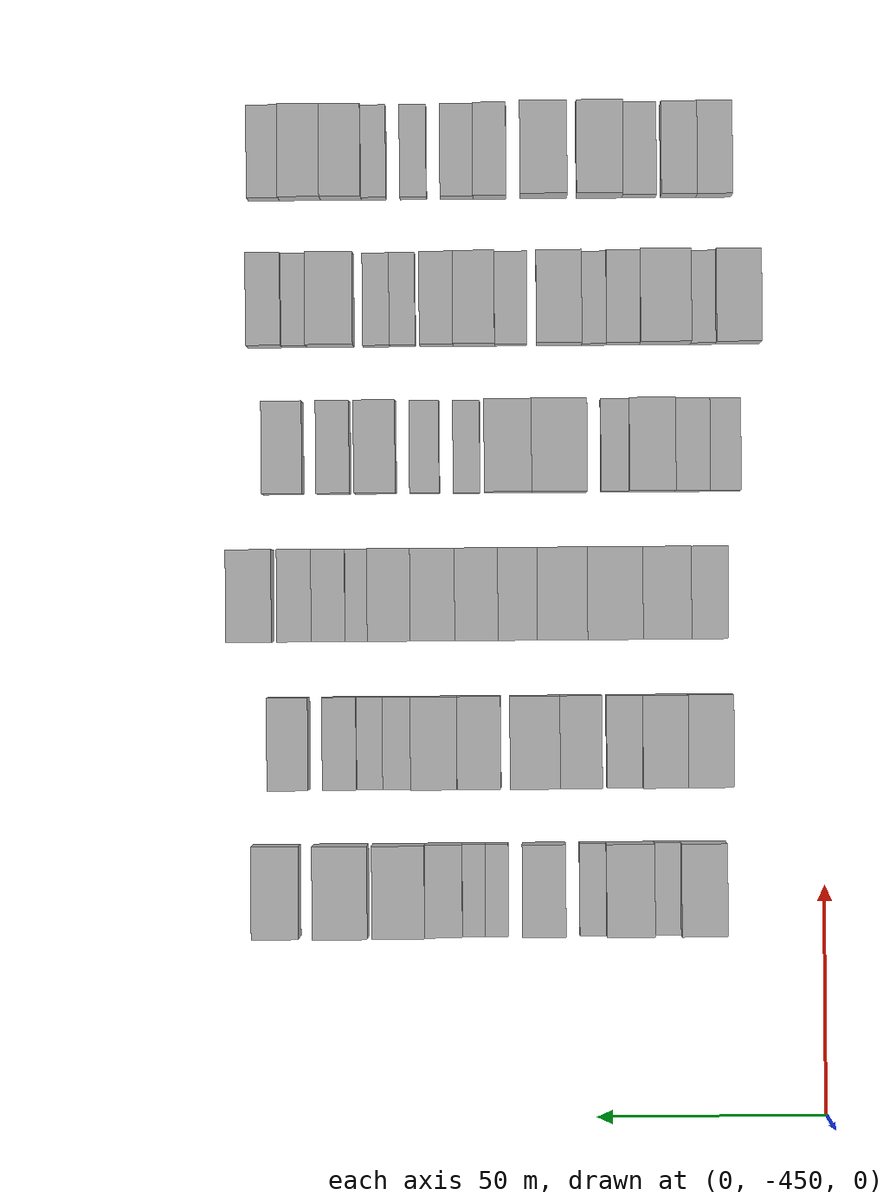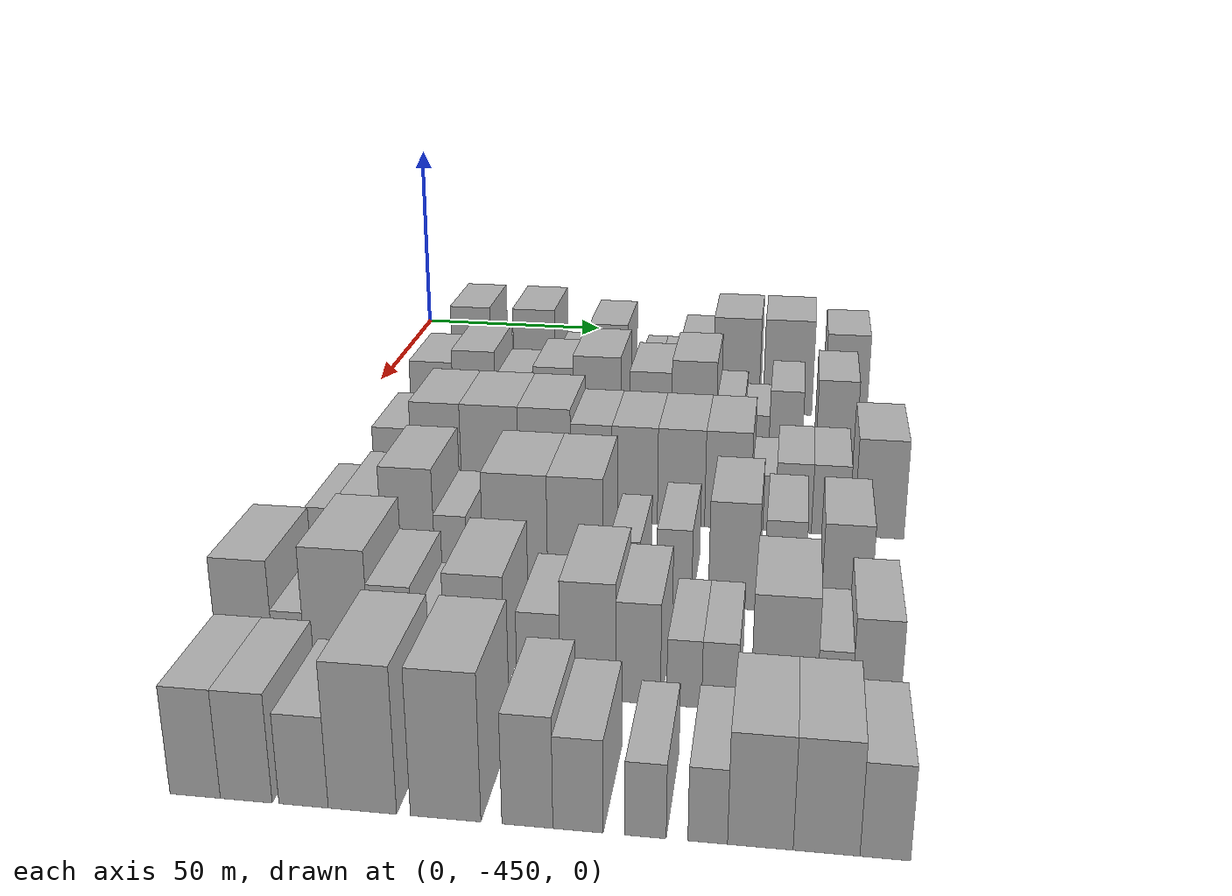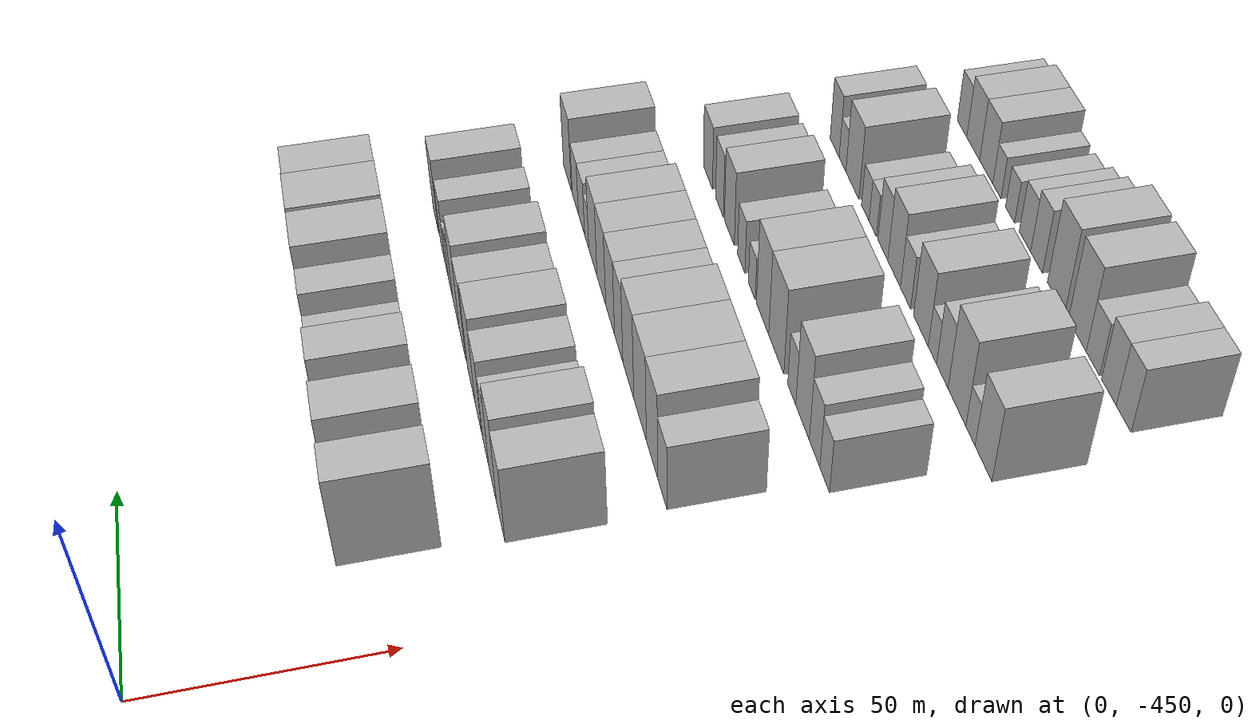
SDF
<sdf version="1.6">
 <world name="default">
  <model name="building_13">
   <static>1</static>
   <pose>50.0000 -423.3441 0 0.000000 0.000000 0.000000</pose>
   <link name="link">
    <pose>0 0 12.00 0 0 0</pose>
    <collision name="collision"><geometry><box><size>20.0000 9.8827 24.0000</size></box></geometry></collision>
    <visual name="visual">
     <cast_shadows>0</cast_shadows>
     <geometry><box><size>20.0000 9.8827 24.0000</size></box></geometry>
     <material>
      <script>
       <uri>model://HANNAS_wall/materials/scripts</uri>
       <uri>model://HANNAS_wall/materials/textures</uri>
       <name>vrc/HANNAS_wall</name>
      </script>
     </material>
    </visual>
   </link>
  </model>
  <model name="building_14">
   <static>1</static>
   <pose>50.0000 -415.5265 0 0.000000 0.000000 0.000000</pose>
   <link name="link">
    <pose>0 0 6.00 0 0 0</pose>
    <collision name="collision"><geometry><box><size>20.0000 5.7524 12.0000</size></box></geometry></collision>
    <visual name="visual">
     <cast_shadows>0</cast_shadows>
     <geometry><box><size>20.0000 5.7524 12.0000</size></box></geometry>
     <material>
      <script>
       <uri>model://HANNAS_wall/materials/scripts</uri>
       <uri>model://HANNAS_wall/materials/textures</uri>
       <name>vrc/HANNAS_wall</name>
      </script>
     </material>
    </visual>
   </link>
  </model>
  <model name="building_15">
   <static>1</static>
   <pose>50.0000 -407.4564 0 0.000000 0.000000 0.000000</pose>
   <link name="link">
    <pose>0 0 12.00 0 0 0</pose>
    <collision name="collision"><geometry><box><size>20.0000 10.3880 24.0000</size></box></geometry></collision>
    <visual name="visual">
     <cast_shadows>0</cast_shadows>
     <geometry><box><size>20.0000 10.3880 24.0000</size></box></geometry>
     <material>
      <script>
       <uri>model://HANNAS_wall/materials/scripts</uri>
       <uri>model://HANNAS_wall/materials/textures</uri>
       <name>vrc/HANNAS_wall</name>
      </script>
     </material>
    </visual>
   </link>
  </model>
  <model name="building_16">
   <static>1</static>
   <pose>50.0000 -399.3901 0 0.000000 0.000000 0.000000</pose>
   <link name="link">
    <pose>0 0 6.00 0 0 0</pose>
    <collision name="collision"><geometry><box><size>20.0000 5.7446 12.0000</size></box></geometry></collision>
    <visual name="visual">
     <cast_shadows>0</cast_shadows>
     <geometry><box><size>20.0000 5.7446 12.0000</size></box></geometry>
     <material>
      <script>
       <uri>model://HANNAS_wall/materials/scripts</uri>
       <uri>model://HANNAS_wall/materials/textures</uri>
       <name>vrc/HANNAS_wall</name>
      </script>
     </material>
    </visual>
   </link>
  </model>
  <model name="building_17">
   <static>1</static>
   <pose>50.0000 -388.8253 0 0.000000 0.000000 0.000000</pose>
   <link name="link">
    <pose>0 0 10.50 0 0 0</pose>
    <collision name="collision"><geometry><box><size>20.0000 9.3849 21.0000</size></box></geometry></collision>
    <visual name="visual">
     <cast_shadows>0</cast_shadows>
     <geometry><box><size>20.0000 9.3849 21.0000</size></box></geometry>
     <material>
      <script>
       <uri>model://HANNAS_wall/materials/scripts</uri>
       <uri>model://HANNAS_wall/materials/textures</uri>
       <name>vrc/HANNAS_wall</name>
      </script>
     </material>
    </visual>
   </link>
  </model>
  <model name="building_18">
   <static>1</static>
   <pose>50.0000 -378.6130 0 0.000000 0.000000 0.000000</pose>
   <link name="link">
    <pose>0 0 6.00 0 0 0</pose>
    <collision name="collision"><geometry><box><size>20.0000 5.0396 12.0000</size></box></geometry></collision>
    <visual name="visual">
     <cast_shadows>0</cast_shadows>
     <geometry><box><size>20.0000 5.0396 12.0000</size></box></geometry>
     <material>
      <script>
       <uri>model://HANNAS_wall/materials/scripts</uri>
       <uri>model://HANNAS_wall/materials/textures</uri>
       <name>vrc/HANNAS_wall</name>
      </script>
     </material>
    </visual>
   </link>
  </model>
  <model name="building_19">
   <static>1</static>
   <pose>50.0000 -373.6251 0 0.000000 0.000000 0.000000</pose>
   <link name="link">
    <pose>0 0 6.00 0 0 0</pose>
    <collision name="collision"><geometry><box><size>20.0000 4.9362 12.0000</size></box></geometry></collision>
    <visual name="visual">
     <cast_shadows>0</cast_shadows>
     <geometry><box><size>20.0000 4.9362 12.0000</size></box></geometry>
     <material>
      <script>
       <uri>model://HANNAS_wall/materials/scripts</uri>
       <uri>model://HANNAS_wall/materials/textures</uri>
       <name>vrc/HANNAS_wall</name>
      </script>
     </material>
    </visual>
   </link>
  </model>
  <model name="building_20">
   <static>1</static>
   <pose>50.0000 -367.1172 0 0.000000 0.000000 0.000000</pose>
   <link name="link">
    <pose>0 0 9.00 0 0 0</pose>
    <collision name="collision"><geometry><box><size>20.0000 8.0795 18.0000</size></box></geometry></collision>
    <visual name="visual">
     <cast_shadows>0</cast_shadows>
     <geometry><box><size>20.0000 8.0795 18.0000</size></box></geometry>
     <material>
      <script>
       <uri>model://HANNAS_wall/materials/scripts</uri>
       <uri>model://HANNAS_wall/materials/textures</uri>
       <name>vrc/HANNAS_wall</name>
      </script>
     </material>
    </visual>
   </link>
  </model>
  <model name="building_21">
   <static>1</static>
   <pose>50.0000 -357.4236 0 0.000000 0.000000 0.000000</pose>
   <link name="link">
    <pose>0 0 12.00 0 0 0</pose>
    <collision name="collision"><geometry><box><size>20.0000 11.3078 24.0000</size></box></geometry></collision>
    <visual name="visual">
     <cast_shadows>0</cast_shadows>
     <geometry><box><size>20.0000 11.3078 24.0000</size></box></geometry>
     <material>
      <script>
       <uri>model://HANNAS_wall/materials/scripts</uri>
       <uri>model://HANNAS_wall/materials/textures</uri>
       <name>vrc/HANNAS_wall</name>
      </script>
     </material>
    </visual>
   </link>
  </model>
  <model name="building_22">
   <static>1</static>
   <pose>50.0000 -344.8530 0 0.000000 0.000000 0.000000</pose>
   <link name="link">
    <pose>0 0 12.00 0 0 0</pose>
    <collision name="collision"><geometry><box><size>20.0000 11.8333 24.0000</size></box></geometry></collision>
    <visual name="visual">
     <cast_shadows>0</cast_shadows>
     <geometry><box><size>20.0000 11.8333 24.0000</size></box></geometry>
     <material>
      <script>
       <uri>model://HANNAS_wall/materials/scripts</uri>
       <uri>model://HANNAS_wall/materials/textures</uri>
       <name>vrc/HANNAS_wall</name>
      </script>
     </material>
    </visual>
   </link>
  </model>
  <model name="building_23">
   <static>1</static>
   <pose>50.0000 -330.8366 0 0.000000 0.000000 0.000000</pose>
   <link name="link">
    <pose>0 0 10.50 0 0 0</pose>
    <collision name="collision"><geometry><box><size>20.0000 10.1995 21.0000</size></box></geometry></collision>
    <visual name="visual">
     <cast_shadows>0</cast_shadows>
     <geometry><box><size>20.0000 10.1995 21.0000</size></box></geometry>
     <material>
      <script>
       <uri>model://HANNAS_wall/materials/scripts</uri>
       <uri>model://HANNAS_wall/materials/textures</uri>
       <name>vrc/HANNAS_wall</name>
      </script>
     </material>
    </visual>
   </link>
  </model>
  <model name="building_132">
   <static>1</static>
   <pose>82.0000 -425.0228 0 0.000000 0.000000 0.000000</pose>
   <link name="link">
    <pose>0 0 10.50 0 0 0</pose>
    <collision name="collision"><geometry><box><size>20.0000 9.8788 21.0000</size></box></geometry></collision>
    <visual name="visual">
     <cast_shadows>0</cast_shadows>
     <geometry><box><size>20.0000 9.8788 21.0000</size></box></geometry>
     <material>
      <script>
       <uri>model://HANNAS_wall/materials/scripts</uri>
       <uri>model://HANNAS_wall/materials/textures</uri>
       <name>vrc/HANNAS_wall</name>
      </script>
     </material>
    </visual>
   </link>
  </model>
  <model name="building_133">
   <static>1</static>
   <pose>82.0000 -415.1996 0 0.000000 0.000000 0.000000</pose>
   <link name="link">
    <pose>0 0 12.00 0 0 0</pose>
    <collision name="collision"><geometry><box><size>20.0000 9.7675 24.0000</size></box></geometry></collision>
    <visual name="visual">
     <cast_shadows>0</cast_shadows>
     <geometry><box><size>20.0000 9.7675 24.0000</size></box></geometry>
     <material>
      <script>
       <uri>model://HANNAS_wall/materials/scripts</uri>
       <uri>model://HANNAS_wall/materials/textures</uri>
       <name>vrc/HANNAS_wall</name>
      </script>
     </material>
    </visual>
   </link>
  </model>
  <model name="building_134">
   <static>1</static>
   <pose>82.0000 -406.4471 0 0.000000 0.000000 0.000000</pose>
   <link name="link">
    <pose>0 0 9.00 0 0 0</pose>
    <collision name="collision"><geometry><box><size>20.0000 7.7374 18.0000</size></box></geometry></collision>
    <visual name="visual">
     <cast_shadows>0</cast_shadows>
     <geometry><box><size>20.0000 7.7374 18.0000</size></box></geometry>
     <material>
      <script>
       <uri>model://HANNAS_wall/materials/scripts</uri>
       <uri>model://HANNAS_wall/materials/textures</uri>
       <name>vrc/HANNAS_wall</name>
      </script>
     </material>
    </visual>
   </link>
  </model>
  <model name="building_135">
   <static>1</static>
   <pose>82.0000 -397.0421 0 0.000000 0.000000 0.000000</pose>
   <link name="link">
    <pose>0 0 10.50 0 0 0</pose>
    <collision name="collision"><geometry><box><size>20.0000 9.0727 21.0000</size></box></geometry></collision>
    <visual name="visual">
     <cast_shadows>0</cast_shadows>
     <geometry><box><size>20.0000 9.0727 21.0000</size></box></geometry>
     <material>
      <script>
       <uri>model://HANNAS_wall/materials/scripts</uri>
       <uri>model://HANNAS_wall/materials/textures</uri>
       <name>vrc/HANNAS_wall</name>
      </script>
     </material>
    </visual>
   </link>
  </model>
  <model name="building_136">
   <static>1</static>
   <pose>82.0000 -387.1147 0 0.000000 0.000000 0.000000</pose>
   <link name="link">
    <pose>0 0 12.00 0 0 0</pose>
    <collision name="collision"><geometry><box><size>20.0000 10.7822 24.0000</size></box></geometry></collision>
    <visual name="visual">
     <cast_shadows>0</cast_shadows>
     <geometry><box><size>20.0000 10.7822 24.0000</size></box></geometry>
     <material>
      <script>
       <uri>model://HANNAS_wall/materials/scripts</uri>
       <uri>model://HANNAS_wall/materials/textures</uri>
       <name>vrc/HANNAS_wall</name>
      </script>
     </material>
    </visual>
   </link>
  </model>
  <model name="building_137">
   <static>1</static>
   <pose>82.0000 -375.0086 0 0.000000 0.000000 0.000000</pose>
   <link name="link">
    <pose>0 0 10.50 0 0 0</pose>
    <collision name="collision"><geometry><box><size>20.0000 9.4299 21.0000</size></box></geometry></collision>
    <visual name="visual">
     <cast_shadows>0</cast_shadows>
     <geometry><box><size>20.0000 9.4299 21.0000</size></box></geometry>
     <material>
      <script>
       <uri>model://HANNAS_wall/materials/scripts</uri>
       <uri>model://HANNAS_wall/materials/textures</uri>
       <name>vrc/HANNAS_wall</name>
      </script>
     </material>
    </visual>
   </link>
  </model>
  <model name="building_138">
   <static>1</static>
   <pose>82.0000 -365.3101 0 0.000000 0.000000 0.000000</pose>
   <link name="link">
    <pose>0 0 12.00 0 0 0</pose>
    <collision name="collision"><geometry><box><size>20.0000 9.9670 24.0000</size></box></geometry></collision>
    <visual name="visual">
     <cast_shadows>0</cast_shadows>
     <geometry><box><size>20.0000 9.9670 24.0000</size></box></geometry>
     <material>
      <script>
       <uri>model://HANNAS_wall/materials/scripts</uri>
       <uri>model://HANNAS_wall/materials/textures</uri>
       <name>vrc/HANNAS_wall</name>
      </script>
     </material>
    </visual>
   </link>
  </model>
  <model name="building_139">
   <static>1</static>
   <pose>82.0000 -357.2554 0 0.000000 0.000000 0.000000</pose>
   <link name="link">
    <pose>0 0 7.50 0 0 0</pose>
    <collision name="collision"><geometry><box><size>20.0000 6.1424 15.0000</size></box></geometry></collision>
    <visual name="visual">
     <cast_shadows>0</cast_shadows>
     <geometry><box><size>20.0000 6.1424 15.0000</size></box></geometry>
     <material>
      <script>
       <uri>model://HANNAS_wall/materials/scripts</uri>
       <uri>model://HANNAS_wall/materials/textures</uri>
       <name>vrc/HANNAS_wall</name>
      </script>
     </material>
    </visual>
   </link>
  </model>
  <model name="building_140">
   <static>1</static>
   <pose>82.0000 -351.3651 0 0.000000 0.000000 0.000000</pose>
   <link name="link">
    <pose>0 0 6.00 0 0 0</pose>
    <collision name="collision"><geometry><box><size>20.0000 5.6383 12.0000</size></box></geometry></collision>
    <visual name="visual">
     <cast_shadows>0</cast_shadows>
     <geometry><box><size>20.0000 5.6383 12.0000</size></box></geometry>
     <material>
      <script>
       <uri>model://HANNAS_wall/materials/scripts</uri>
       <uri>model://HANNAS_wall/materials/textures</uri>
       <name>vrc/HANNAS_wall</name>
      </script>
     </material>
    </visual>
   </link>
  </model>
  <model name="building_141">
   <static>1</static>
   <pose>82.0000 -344.8826 0 0.000000 0.000000 0.000000</pose>
   <link name="link">
    <pose>0 0 9.00 0 0 0</pose>
    <collision name="collision"><geometry><box><size>20.0000 7.3267 18.0000</size></box></geometry></collision>
    <visual name="visual">
     <cast_shadows>0</cast_shadows>
     <geometry><box><size>20.0000 7.3267 18.0000</size></box></geometry>
     <material>
      <script>
       <uri>model://HANNAS_wall/materials/scripts</uri>
       <uri>model://HANNAS_wall/materials/textures</uri>
       <name>vrc/HANNAS_wall</name>
      </script>
     </material>
    </visual>
   </link>
  </model>
  <model name="building_142">
   <static>1</static>
   <pose>82.0000 -333.8026 0 0.000000 0.000000 0.000000</pose>
   <link name="link">
    <pose>0 0 10.50 0 0 0</pose>
    <collision name="collision"><geometry><box><size>20.0000 8.8333 21.0000</size></box></geometry></collision>
    <visual name="visual">
     <cast_shadows>0</cast_shadows>
     <geometry><box><size>20.0000 8.8333 21.0000</size></box></geometry>
     <material>
      <script>
       <uri>model://HANNAS_wall/materials/scripts</uri>
       <uri>model://HANNAS_wall/materials/textures</uri>
       <name>vrc/HANNAS_wall</name>
      </script>
     </material>
    </visual>
   </link>
  </model>
  <model name="building_247">
   <static>1</static>
   <pose>114.0000 -424.9972 0 0.000000 0.000000 0.000000</pose>
   <link name="link">
    <pose>0 0 9.00 0 0 0</pose>
    <collision name="collision"><geometry><box><size>20.0000 8.0462 18.0000</size></box></geometry></collision>
    <visual name="visual">
     <cast_shadows>0</cast_shadows>
     <geometry><box><size>20.0000 8.0462 18.0000</size></box></geometry>
     <material>
      <script>
       <uri>model://HANNAS_wall/materials/scripts</uri>
       <uri>model://HANNAS_wall/materials/textures</uri>
       <name>vrc/HANNAS_wall</name>
      </script>
     </material>
    </visual>
   </link>
  </model>
  <model name="building_248">
   <static>1</static>
   <pose>114.0000 -415.7687 0 0.000000 0.000000 0.000000</pose>
   <link name="link">
    <pose>0 0 12.00 0 0 0</pose>
    <collision name="collision"><geometry><box><size>20.0000 10.4108 24.0000</size></box></geometry></collision>
    <visual name="visual">
     <cast_shadows>0</cast_shadows>
     <geometry><box><size>20.0000 10.4108 24.0000</size></box></geometry>
     <material>
      <script>
       <uri>model://HANNAS_wall/materials/scripts</uri>
       <uri>model://HANNAS_wall/materials/textures</uri>
       <name>vrc/HANNAS_wall</name>
      </script>
     </material>
    </visual>
   </link>
  </model>
  <model name="building_249">
   <static>1</static>
   <pose>114.0000 -404.5948 0 0.000000 0.000000 0.000000</pose>
   <link name="link">
    <pose>0 0 12.00 0 0 0</pose>
    <collision name="collision"><geometry><box><size>20.0000 11.9370 24.0000</size></box></geometry></collision>
    <visual name="visual">
     <cast_shadows>0</cast_shadows>
     <geometry><box><size>20.0000 11.9370 24.0000</size></box></geometry>
     <material>
      <script>
       <uri>model://HANNAS_wall/materials/scripts</uri>
       <uri>model://HANNAS_wall/materials/textures</uri>
       <name>vrc/HANNAS_wall</name>
      </script>
     </material>
    </visual>
   </link>
  </model>
  <model name="building_250">
   <static>1</static>
   <pose>114.0000 -393.2254 0 0.000000 0.000000 0.000000</pose>
   <link name="link">
    <pose>0 0 12.00 0 0 0</pose>
    <collision name="collision"><geometry><box><size>20.0000 10.8018 24.0000</size></box></geometry></collision>
    <visual name="visual">
     <cast_shadows>0</cast_shadows>
     <geometry><box><size>20.0000 10.8018 24.0000</size></box></geometry>
     <material>
      <script>
       <uri>model://HANNAS_wall/materials/scripts</uri>
       <uri>model://HANNAS_wall/materials/textures</uri>
       <name>vrc/HANNAS_wall</name>
      </script>
     </material>
    </visual>
   </link>
  </model>
  <model name="building_251">
   <static>1</static>
   <pose>114.0000 -383.5930 0 0.000000 0.000000 0.000000</pose>
   <link name="link">
    <pose>0 0 10.50 0 0 0</pose>
    <collision name="collision"><geometry><box><size>20.0000 8.4630 21.0000</size></box></geometry></collision>
    <visual name="visual">
     <cast_shadows>0</cast_shadows>
     <geometry><box><size>20.0000 8.4630 21.0000</size></box></geometry>
     <material>
      <script>
       <uri>model://HANNAS_wall/materials/scripts</uri>
       <uri>model://HANNAS_wall/materials/textures</uri>
       <name>vrc/HANNAS_wall</name>
      </script>
     </material>
    </visual>
   </link>
  </model>
  <model name="building_252">
   <static>1</static>
   <pose>114.0000 -374.7027 0 0.000000 0.000000 0.000000</pose>
   <link name="link">
    <pose>0 0 10.50 0 0 0</pose>
    <collision name="collision"><geometry><box><size>20.0000 9.3175 21.0000</size></box></geometry></collision>
    <visual name="visual">
     <cast_shadows>0</cast_shadows>
     <geometry><box><size>20.0000 9.3175 21.0000</size></box></geometry>
     <material>
      <script>
       <uri>model://HANNAS_wall/materials/scripts</uri>
       <uri>model://HANNAS_wall/materials/textures</uri>
       <name>vrc/HANNAS_wall</name>
      </script>
     </material>
    </visual>
   </link>
  </model>
  <model name="building_253">
   <static>1</static>
   <pose>114.0000 -365.2461 0 0.000000 0.000000 0.000000</pose>
   <link name="link">
    <pose>0 0 10.50 0 0 0</pose>
    <collision name="collision"><geometry><box><size>20.0000 9.5958 21.0000</size></box></geometry></collision>
    <visual name="visual">
     <cast_shadows>0</cast_shadows>
     <geometry><box><size>20.0000 9.5958 21.0000</size></box></geometry>
     <material>
      <script>
       <uri>model://HANNAS_wall/materials/scripts</uri>
       <uri>model://HANNAS_wall/materials/textures</uri>
       <name>vrc/HANNAS_wall</name>
      </script>
     </material>
    </visual>
   </link>
  </model>
  <model name="building_254">
   <static>1</static>
   <pose>114.0000 -355.8283 0 0.000000 0.000000 0.000000</pose>
   <link name="link">
    <pose>0 0 10.50 0 0 0</pose>
    <collision name="collision"><geometry><box><size>20.0000 9.2398 21.0000</size></box></geometry></collision>
    <visual name="visual">
     <cast_shadows>0</cast_shadows>
     <geometry><box><size>20.0000 9.2398 21.0000</size></box></geometry>
     <material>
      <script>
       <uri>model://HANNAS_wall/materials/scripts</uri>
       <uri>model://HANNAS_wall/materials/textures</uri>
       <name>vrc/HANNAS_wall</name>
      </script>
     </material>
    </visual>
   </link>
  </model>
  <model name="building_255">
   <static>1</static>
   <pose>114.0000 -348.7477 0 0.000000 0.000000 0.000000</pose>
   <link name="link">
    <pose>0 0 6.00 0 0 0</pose>
    <collision name="collision"><geometry><box><size>20.0000 4.9213 12.0000</size></box></geometry></collision>
    <visual name="visual">
     <cast_shadows>0</cast_shadows>
     <geometry><box><size>20.0000 4.9213 12.0000</size></box></geometry>
     <material>
      <script>
       <uri>model://HANNAS_wall/materials/scripts</uri>
       <uri>model://HANNAS_wall/materials/textures</uri>
       <name>vrc/HANNAS_wall</name>
      </script>
     </material>
    </visual>
   </link>
  </model>
  <model name="building_256">
   <static>1</static>
   <pose>114.0000 -342.6490 0 0.000000 0.000000 0.000000</pose>
   <link name="link">
    <pose>0 0 7.50 0 0 0</pose>
    <collision name="collision"><geometry><box><size>20.0000 7.2761 15.0000</size></box></geometry></collision>
    <visual name="visual">
     <cast_shadows>0</cast_shadows>
     <geometry><box><size>20.0000 7.2761 15.0000</size></box></geometry>
     <material>
      <script>
       <uri>model://HANNAS_wall/materials/scripts</uri>
       <uri>model://HANNAS_wall/materials/textures</uri>
       <name>vrc/HANNAS_wall</name>
      </script>
     </material>
    </visual>
   </link>
  </model>
  <model name="building_257">
   <static>1</static>
   <pose>114.0000 -335.3030 0 0.000000 0.000000 0.000000</pose>
   <link name="link">
    <pose>0 0 7.50 0 0 0</pose>
    <collision name="collision"><geometry><box><size>20.0000 7.4159 15.0000</size></box></geometry></collision>
    <visual name="visual">
     <cast_shadows>0</cast_shadows>
     <geometry><box><size>20.0000 7.4159 15.0000</size></box></geometry>
     <material>
      <script>
       <uri>model://HANNAS_wall/materials/scripts</uri>
       <uri>model://HANNAS_wall/materials/textures</uri>
       <name>vrc/HANNAS_wall</name>
      </script>
     </material>
    </visual>
   </link>
  </model>
  <model name="building_258">
   <static>1</static>
   <pose>114.0000 -325.6905 0 0.000000 0.000000 0.000000</pose>
   <link name="link">
    <pose>0 0 10.50 0 0 0</pose>
    <collision name="collision"><geometry><box><size>20.0000 9.8091 21.0000</size></box></geometry></collision>
    <visual name="visual">
     <cast_shadows>0</cast_shadows>
     <geometry><box><size>20.0000 9.8091 21.0000</size></box></geometry>
     <material>
      <script>
       <uri>model://HANNAS_wall/materials/scripts</uri>
       <uri>model://HANNAS_wall/materials/textures</uri>
       <name>vrc/HANNAS_wall</name>
      </script>
     </material>
    </visual>
   </link>
  </model>
  <model name="building_367">
   <static>1</static>
   <pose>146.0000 -428.7215 0 0.000000 0.000000 0.000000</pose>
   <link name="link">
    <pose>0 0 7.50 0 0 0</pose>
    <collision name="collision"><geometry><box><size>20.0000 6.7267 15.0000</size></box></geometry></collision>
    <visual name="visual">
     <cast_shadows>0</cast_shadows>
     <geometry><box><size>20.0000 6.7267 15.0000</size></box></geometry>
     <material>
      <script>
       <uri>model://HANNAS_wall/materials/scripts</uri>
       <uri>model://HANNAS_wall/materials/textures</uri>
       <name>vrc/HANNAS_wall</name>
      </script>
     </material>
    </visual>
   </link>
  </model>
  <model name="building_368">
   <static>1</static>
   <pose>146.0000 -421.6131 0 0.000000 0.000000 0.000000</pose>
   <link name="link">
    <pose>0 0 9.00 0 0 0</pose>
    <collision name="collision"><geometry><box><size>20.0000 7.4901 18.0000</size></box></geometry></collision>
    <visual name="visual">
     <cast_shadows>0</cast_shadows>
     <geometry><box><size>20.0000 7.4901 18.0000</size></box></geometry>
     <material>
      <script>
       <uri>model://HANNAS_wall/materials/scripts</uri>
       <uri>model://HANNAS_wall/materials/textures</uri>
       <name>vrc/HANNAS_wall</name>
      </script>
     </material>
    </visual>
   </link>
  </model>
  <model name="building_369">
   <static>1</static>
   <pose>146.0000 -412.8844 0 0.000000 0.000000 0.000000</pose>
   <link name="link">
    <pose>0 0 12.00 0 0 0</pose>
    <collision name="collision"><geometry><box><size>20.0000 9.9672 24.0000</size></box></geometry></collision>
    <visual name="visual">
     <cast_shadows>0</cast_shadows>
     <geometry><box><size>20.0000 9.9672 24.0000</size></box></geometry>
     <material>
      <script>
       <uri>model://HANNAS_wall/materials/scripts</uri>
       <uri>model://HANNAS_wall/materials/textures</uri>
       <name>vrc/HANNAS_wall</name>
      </script>
     </material>
    </visual>
   </link>
  </model>
  <model name="building_370">
   <static>1</static>
   <pose>146.0000 -404.8685 0 0.000000 0.000000 0.000000</pose>
   <link name="link">
    <pose>0 0 7.50 0 0 0</pose>
    <collision name="collision"><geometry><box><size>20.0000 6.0647 15.0000</size></box></geometry></collision>
    <visual name="visual">
     <cast_shadows>0</cast_shadows>
     <geometry><box><size>20.0000 6.0647 15.0000</size></box></geometry>
     <material>
      <script>
       <uri>model://HANNAS_wall/materials/scripts</uri>
       <uri>model://HANNAS_wall/materials/textures</uri>
       <name>vrc/HANNAS_wall</name>
      </script>
     </material>
    </visual>
   </link>
  </model>
  <model name="building_371">
   <static>1</static>
   <pose>146.0000 -392.8470 0 0.000000 0.000000 0.000000</pose>
   <link name="link">
    <pose>0 0 12.00 0 0 0</pose>
    <collision name="collision"><geometry><box><size>20.0000 11.9784 24.0000</size></box></geometry></collision>
    <visual name="visual">
     <cast_shadows>0</cast_shadows>
     <geometry><box><size>20.0000 11.9784 24.0000</size></box></geometry>
     <material>
      <script>
       <uri>model://HANNAS_wall/materials/scripts</uri>
       <uri>model://HANNAS_wall/materials/textures</uri>
       <name>vrc/HANNAS_wall</name>
      </script>
     </material>
    </visual>
   </link>
  </model>
  <model name="building_372">
   <static>1</static>
   <pose>146.0000 -381.7599 0 0.000000 0.000000 0.000000</pose>
   <link name="link">
    <pose>0 0 12.00 0 0 0</pose>
    <collision name="collision"><geometry><box><size>20.0000 10.1957 24.0000</size></box></geometry></collision>
    <visual name="visual">
     <cast_shadows>0</cast_shadows>
     <geometry><box><size>20.0000 10.1957 24.0000</size></box></geometry>
     <material>
      <script>
       <uri>model://HANNAS_wall/materials/scripts</uri>
       <uri>model://HANNAS_wall/materials/textures</uri>
       <name>vrc/HANNAS_wall</name>
      </script>
     </material>
    </visual>
   </link>
  </model>
  <model name="building_373">
   <static>1</static>
   <pose>146.0000 -372.7649 0 0.000000 0.000000 0.000000</pose>
   <link name="link">
    <pose>0 0 6.00 0 0 0</pose>
    <collision name="collision"><geometry><box><size>20.0000 5.7943 12.0000</size></box></geometry></collision>
    <visual name="visual">
     <cast_shadows>0</cast_shadows>
     <geometry><box><size>20.0000 5.7943 12.0000</size></box></geometry>
     <material>
      <script>
       <uri>model://HANNAS_wall/materials/scripts</uri>
       <uri>model://HANNAS_wall/materials/textures</uri>
       <name>vrc/HANNAS_wall</name>
      </script>
     </material>
    </visual>
   </link>
  </model>
  <model name="building_374">
   <static>1</static>
   <pose>146.0000 -363.6712 0 0.000000 0.000000 0.000000</pose>
   <link name="link">
    <pose>0 0 7.50 0 0 0</pose>
    <collision name="collision"><geometry><box><size>20.0000 6.3931 15.0000</size></box></geometry></collision>
    <visual name="visual">
     <cast_shadows>0</cast_shadows>
     <geometry><box><size>20.0000 6.3931 15.0000</size></box></geometry>
     <material>
      <script>
       <uri>model://HANNAS_wall/materials/scripts</uri>
       <uri>model://HANNAS_wall/materials/textures</uri>
       <name>vrc/HANNAS_wall</name>
      </script>
     </material>
    </visual>
   </link>
  </model>
  <model name="building_375">
   <static>1</static>
   <pose>146.0000 -353.0083 0 0.000000 0.000000 0.000000</pose>
   <link name="link">
    <pose>0 0 10.50 0 0 0</pose>
    <collision name="collision"><geometry><box><size>20.0000 8.9327 21.0000</size></box></geometry></collision>
    <visual name="visual">
     <cast_shadows>0</cast_shadows>
     <geometry><box><size>20.0000 8.9327 21.0000</size></box></geometry>
     <material>
      <script>
       <uri>model://HANNAS_wall/materials/scripts</uri>
       <uri>model://HANNAS_wall/materials/textures</uri>
       <name>vrc/HANNAS_wall</name>
      </script>
     </material>
    </visual>
   </link>
  </model>
  <model name="building_376">
   <static>1</static>
   <pose>146.0000 -343.9354 0 0.000000 0.000000 0.000000</pose>
   <link name="link">
    <pose>0 0 9.00 0 0 0</pose>
    <collision name="collision"><geometry><box><size>20.0000 7.2131 18.0000</size></box></geometry></collision>
    <visual name="visual">
     <cast_shadows>0</cast_shadows>
     <geometry><box><size>20.0000 7.2131 18.0000</size></box></geometry>
     <material>
      <script>
       <uri>model://HANNAS_wall/materials/scripts</uri>
       <uri>model://HANNAS_wall/materials/textures</uri>
       <name>vrc/HANNAS_wall</name>
      </script>
     </material>
    </visual>
   </link>
  </model>
  <model name="building_377">
   <static>1</static>
   <pose>146.0000 -332.9592 0 0.000000 0.000000 0.000000</pose>
   <link name="link">
    <pose>0 0 9.00 0 0 0</pose>
    <collision name="collision"><geometry><box><size>20.0000 8.7394 18.0000</size></box></geometry></collision>
    <visual name="visual">
     <cast_shadows>0</cast_shadows>
     <geometry><box><size>20.0000 8.7394 18.0000</size></box></geometry>
     <material>
      <script>
       <uri>model://HANNAS_wall/materials/scripts</uri>
       <uri>model://HANNAS_wall/materials/textures</uri>
       <name>vrc/HANNAS_wall</name>
      </script>
     </material>
    </visual>
   </link>
  </model>
  <model name="building_486">
   <static>1</static>
   <pose>178.0000 -431.8001 0 0.000000 0.000000 0.000000</pose>
   <link name="link">
    <pose>0 0 10.50 0 0 0</pose>
    <collision name="collision"><geometry><box><size>20.0000 9.7469 21.0000</size></box></geometry></collision>
    <visual name="visual">
     <cast_shadows>0</cast_shadows>
     <geometry><box><size>20.0000 9.7469 21.0000</size></box></geometry>
     <material>
      <script>
       <uri>model://HANNAS_wall/materials/scripts</uri>
       <uri>model://HANNAS_wall/materials/textures</uri>
       <name>vrc/HANNAS_wall</name>
      </script>
     </material>
    </visual>
   </link>
  </model>
  <model name="building_487">
   <static>1</static>
   <pose>178.0000 -424.2094 0 0.000000 0.000000 0.000000</pose>
   <link name="link">
    <pose>0 0 6.00 0 0 0</pose>
    <collision name="collision"><geometry><box><size>20.0000 5.4347 12.0000</size></box></geometry></collision>
    <visual name="visual">
     <cast_shadows>0</cast_shadows>
     <geometry><box><size>20.0000 5.4347 12.0000</size></box></geometry>
     <material>
      <script>
       <uri>model://HANNAS_wall/materials/scripts</uri>
       <uri>model://HANNAS_wall/materials/textures</uri>
       <name>vrc/HANNAS_wall</name>
      </script>
     </material>
    </visual>
   </link>
  </model>
  <model name="building_488">
   <static>1</static>
   <pose>178.0000 -416.0142 0 0.000000 0.000000 0.000000</pose>
   <link name="link">
    <pose>0 0 12.00 0 0 0</pose>
    <collision name="collision"><geometry><box><size>20.0000 10.9557 24.0000</size></box></geometry></collision>
    <visual name="visual">
     <cast_shadows>0</cast_shadows>
     <geometry><box><size>20.0000 10.9557 24.0000</size></box></geometry>
     <material>
      <script>
       <uri>model://HANNAS_wall/materials/scripts</uri>
       <uri>model://HANNAS_wall/materials/textures</uri>
       <name>vrc/HANNAS_wall</name>
      </script>
     </material>
    </visual>
   </link>
  </model>
  <model name="building_489">
   <static>1</static>
   <pose>178.0000 -406.8991 0 0.000000 0.000000 0.000000</pose>
   <link name="link">
    <pose>0 0 9.00 0 0 0</pose>
    <collision name="collision"><geometry><box><size>20.0000 7.2745 18.0000</size></box></geometry></collision>
    <visual name="visual">
     <cast_shadows>0</cast_shadows>
     <geometry><box><size>20.0000 7.2745 18.0000</size></box></geometry>
     <material>
      <script>
       <uri>model://HANNAS_wall/materials/scripts</uri>
       <uri>model://HANNAS_wall/materials/textures</uri>
       <name>vrc/HANNAS_wall</name>
      </script>
     </material>
    </visual>
   </link>
  </model>
  <model name="building_490">
   <static>1</static>
   <pose>178.0000 -400.5931 0 0.000000 0.000000 0.000000</pose>
   <link name="link">
    <pose>0 0 6.00 0 0 0</pose>
    <collision name="collision"><geometry><box><size>20.0000 5.3374 12.0000</size></box></geometry></collision>
    <visual name="visual">
     <cast_shadows>0</cast_shadows>
     <geometry><box><size>20.0000 5.3374 12.0000</size></box></geometry>
     <material>
      <script>
       <uri>model://HANNAS_wall/materials/scripts</uri>
       <uri>model://HANNAS_wall/materials/textures</uri>
       <name>vrc/HANNAS_wall</name>
      </script>
     </material>
    </visual>
   </link>
  </model>
  <model name="building_491">
   <static>1</static>
   <pose>178.0000 -393.0207 0 0.000000 0.000000 0.000000</pose>
   <link name="link">
    <pose>0 0 10.50 0 0 0</pose>
    <collision name="collision"><geometry><box><size>20.0000 9.8074 21.0000</size></box></geometry></collision>
    <visual name="visual">
     <cast_shadows>0</cast_shadows>
     <geometry><box><size>20.0000 9.8074 21.0000</size></box></geometry>
     <material>
      <script>
       <uri>model://HANNAS_wall/materials/scripts</uri>
       <uri>model://HANNAS_wall/materials/textures</uri>
       <name>vrc/HANNAS_wall</name>
      </script>
     </material>
    </visual>
   </link>
  </model>
  <model name="building_492">
   <static>1</static>
   <pose>178.0000 -382.5973 0 0.000000 0.000000 0.000000</pose>
   <link name="link">
    <pose>0 0 7.50 0 0 0</pose>
    <collision name="collision"><geometry><box><size>20.0000 7.0393 15.0000</size></box></geometry></collision>
    <visual name="visual">
     <cast_shadows>0</cast_shadows>
     <geometry><box><size>20.0000 7.0393 15.0000</size></box></geometry>
     <material>
      <script>
       <uri>model://HANNAS_wall/materials/scripts</uri>
       <uri>model://HANNAS_wall/materials/textures</uri>
       <name>vrc/HANNAS_wall</name>
      </script>
     </material>
    </visual>
   </link>
  </model>
  <model name="building_493">
   <static>1</static>
   <pose>178.0000 -374.5870 0 0.000000 0.000000 0.000000</pose>
   <link name="link">
    <pose>0 0 10.50 0 0 0</pose>
    <collision name="collision"><geometry><box><size>20.0000 8.9814 21.0000</size></box></geometry></collision>
    <visual name="visual">
     <cast_shadows>0</cast_shadows>
     <geometry><box><size>20.0000 8.9814 21.0000</size></box></geometry>
     <material>
      <script>
       <uri>model://HANNAS_wall/materials/scripts</uri>
       <uri>model://HANNAS_wall/materials/textures</uri>
       <name>vrc/HANNAS_wall</name>
      </script>
     </material>
    </visual>
   </link>
  </model>
  <model name="building_494">
   <static>1</static>
   <pose>178.0000 -366.4858 0 0.000000 0.000000 0.000000</pose>
   <link name="link">
    <pose>0 0 9.00 0 0 0</pose>
    <collision name="collision"><geometry><box><size>20.0000 7.2210 18.0000</size></box></geometry></collision>
    <visual name="visual">
     <cast_shadows>0</cast_shadows>
     <geometry><box><size>20.0000 7.2210 18.0000</size></box></geometry>
     <material>
      <script>
       <uri>model://HANNAS_wall/materials/scripts</uri>
       <uri>model://HANNAS_wall/materials/textures</uri>
       <name>vrc/HANNAS_wall</name>
      </script>
     </material>
    </visual>
   </link>
  </model>
  <model name="building_495">
   <static>1</static>
   <pose>178.0000 -359.0787 0 0.000000 0.000000 0.000000</pose>
   <link name="link">
    <pose>0 0 6.00 0 0 0</pose>
    <collision name="collision"><geometry><box><size>20.0000 5.5933 12.0000</size></box></geometry></collision>
    <visual name="visual">
     <cast_shadows>0</cast_shadows>
     <geometry><box><size>20.0000 5.5933 12.0000</size></box></geometry>
     <material>
      <script>
       <uri>model://HANNAS_wall/materials/scripts</uri>
       <uri>model://HANNAS_wall/materials/textures</uri>
       <name>vrc/HANNAS_wall</name>
      </script>
     </material>
    </visual>
   </link>
  </model>
  <model name="building_496">
   <static>1</static>
   <pose>178.0000 -353.4071 0 0.000000 0.000000 0.000000</pose>
   <link name="link">
    <pose>0 0 6.00 0 0 0</pose>
    <collision name="collision"><geometry><box><size>20.0000 5.7499 12.0000</size></box></geometry></collision>
    <visual name="visual">
     <cast_shadows>0</cast_shadows>
     <geometry><box><size>20.0000 5.7499 12.0000</size></box></geometry>
     <material>
      <script>
       <uri>model://HANNAS_wall/materials/scripts</uri>
       <uri>model://HANNAS_wall/materials/textures</uri>
       <name>vrc/HANNAS_wall</name>
      </script>
     </material>
    </visual>
   </link>
  </model>
  <model name="building_497">
   <static>1</static>
   <pose>178.0000 -343.4087 0 0.000000 0.000000 0.000000</pose>
   <link name="link">
    <pose>0 0 10.50 0 0 0</pose>
    <collision name="collision"><geometry><box><size>20.0000 10.2468 21.0000</size></box></geometry></collision>
    <visual name="visual">
     <cast_shadows>0</cast_shadows>
     <geometry><box><size>20.0000 10.2468 21.0000</size></box></geometry>
     <material>
      <script>
       <uri>model://HANNAS_wall/materials/scripts</uri>
       <uri>model://HANNAS_wall/materials/textures</uri>
       <name>vrc/HANNAS_wall</name>
      </script>
     </material>
    </visual>
   </link>
  </model>
  <model name="building_498">
   <static>1</static>
   <pose>178.0000 -335.5845 0 0.000000 0.000000 0.000000</pose>
   <link name="link">
    <pose>0 0 6.00 0 0 0</pose>
    <collision name="collision"><geometry><box><size>20.0000 5.4016 12.0000</size></box></geometry></collision>
    <visual name="visual">
     <cast_shadows>0</cast_shadows>
     <geometry><box><size>20.0000 5.4016 12.0000</size></box></geometry>
     <material>
      <script>
       <uri>model://HANNAS_wall/materials/scripts</uri>
       <uri>model://HANNAS_wall/materials/textures</uri>
       <name>vrc/HANNAS_wall</name>
      </script>
     </material>
    </visual>
   </link>
  </model>
  <model name="building_499">
   <static>1</static>
   <pose>178.0000 -329.1633 0 0.000000 0.000000 0.000000</pose>
   <link name="link">
    <pose>0 0 9.00 0 0 0</pose>
    <collision name="collision"><geometry><box><size>20.0000 7.4407 18.0000</size></box></geometry></collision>
    <visual name="visual">
     <cast_shadows>0</cast_shadows>
     <geometry><box><size>20.0000 7.4407 18.0000</size></box></geometry>
     <material>
      <script>
       <uri>model://HANNAS_wall/materials/scripts</uri>
       <uri>model://HANNAS_wall/materials/textures</uri>
       <name>vrc/HANNAS_wall</name>
      </script>
     </material>
    </visual>
   </link>
  </model>
  <model name="building_600">
   <static>1</static>
   <pose>210.0000 -426.8578 0 0.000000 0.000000 0.000000</pose>
   <link name="link">
    <pose>0 0 9.00 0 0 0</pose>
    <collision name="collision"><geometry><box><size>20.0000 7.6102 18.0000</size></box></geometry></collision>
    <visual name="visual">
     <cast_shadows>0</cast_shadows>
     <geometry><box><size>20.0000 7.6102 18.0000</size></box></geometry>
     <material>
      <script>
       <uri>model://HANNAS_wall/materials/scripts</uri>
       <uri>model://HANNAS_wall/materials/textures</uri>
       <name>vrc/HANNAS_wall</name>
      </script>
     </material>
    </visual>
   </link>
  </model>
  <model name="building_601">
   <static>1</static>
   <pose>210.0000 -419.1767 0 0.000000 0.000000 0.000000</pose>
   <link name="link">
    <pose>0 0 9.00 0 0 0</pose>
    <collision name="collision"><geometry><box><size>20.0000 7.7518 18.0000</size></box></geometry></collision>
    <visual name="visual">
     <cast_shadows>0</cast_shadows>
     <geometry><box><size>20.0000 7.7518 18.0000</size></box></geometry>
     <material>
      <script>
       <uri>model://HANNAS_wall/materials/scripts</uri>
       <uri>model://HANNAS_wall/materials/textures</uri>
       <name>vrc/HANNAS_wall</name>
      </script>
     </material>
    </visual>
   </link>
  </model>
  <model name="building_602">
   <static>1</static>
   <pose>210.0000 -410.6493 0 0.000000 0.000000 0.000000</pose>
   <link name="link">
    <pose>0 0 7.50 0 0 0</pose>
    <collision name="collision"><geometry><box><size>20.0000 7.3031 15.0000</size></box></geometry></collision>
    <visual name="visual">
     <cast_shadows>0</cast_shadows>
     <geometry><box><size>20.0000 7.3031 15.0000</size></box></geometry>
     <material>
      <script>
       <uri>model://HANNAS_wall/materials/scripts</uri>
       <uri>model://HANNAS_wall/materials/textures</uri>
       <name>vrc/HANNAS_wall</name>
      </script>
     </material>
    </visual>
   </link>
  </model>
  <model name="building_603">
   <static>1</static>
   <pose>210.0000 -401.9939 0 0.000000 0.000000 0.000000</pose>
   <link name="link">
    <pose>0 0 12.00 0 0 0</pose>
    <collision name="collision"><geometry><box><size>20.0000 10.0077 24.0000</size></box></geometry></collision>
    <visual name="visual">
     <cast_shadows>0</cast_shadows>
     <geometry><box><size>20.0000 10.0077 24.0000</size></box></geometry>
     <material>
      <script>
       <uri>model://HANNAS_wall/materials/scripts</uri>
       <uri>model://HANNAS_wall/materials/textures</uri>
       <name>vrc/HANNAS_wall</name>
      </script>
     </material>
    </visual>
   </link>
  </model>
  <model name="building_604">
   <static>1</static>
   <pose>210.0000 -389.9140 0 0.000000 0.000000 0.000000</pose>
   <link name="link">
    <pose>0 0 12.00 0 0 0</pose>
    <collision name="collision"><geometry><box><size>20.0000 10.1521 24.0000</size></box></geometry></collision>
    <visual name="visual">
     <cast_shadows>0</cast_shadows>
     <geometry><box><size>20.0000 10.1521 24.0000</size></box></geometry>
     <material>
      <script>
       <uri>model://HANNAS_wall/materials/scripts</uri>
       <uri>model://HANNAS_wall/materials/textures</uri>
       <name>vrc/HANNAS_wall</name>
      </script>
     </material>
    </visual>
   </link>
  </model>
  <model name="building_605">
   <static>1</static>
   <pose>210.0000 -378.2266 0 0.000000 0.000000 0.000000</pose>
   <link name="link">
    <pose>0 0 9.00 0 0 0</pose>
    <collision name="collision"><geometry><box><size>20.0000 7.2227 18.0000</size></box></geometry></collision>
    <visual name="visual">
     <cast_shadows>0</cast_shadows>
     <geometry><box><size>20.0000 7.2227 18.0000</size></box></geometry>
     <material>
      <script>
       <uri>model://HANNAS_wall/materials/scripts</uri>
       <uri>model://HANNAS_wall/materials/textures</uri>
       <name>vrc/HANNAS_wall</name>
      </script>
     </material>
    </visual>
   </link>
  </model>
  <model name="building_606">
   <static>1</static>
   <pose>210.0000 -371.0778 0 0.000000 0.000000 0.000000</pose>
   <link name="link">
    <pose>0 0 7.50 0 0 0</pose>
    <collision name="collision"><geometry><box><size>20.0000 7.0749 15.0000</size></box></geometry></collision>
    <visual name="visual">
     <cast_shadows>0</cast_shadows>
     <geometry><box><size>20.0000 7.0749 15.0000</size></box></geometry>
     <material>
      <script>
       <uri>model://HANNAS_wall/materials/scripts</uri>
       <uri>model://HANNAS_wall/materials/textures</uri>
       <name>vrc/HANNAS_wall</name>
      </script>
     </material>
    </visual>
   </link>
  </model>
  <model name="building_607">
   <static>1</static>
   <pose>210.0000 -361.6664 0 0.000000 0.000000 0.000000</pose>
   <link name="link">
    <pose>0 0 6.00 0 0 0</pose>
    <collision name="collision"><geometry><box><size>20.0000 5.7479 12.0000</size></box></geometry></collision>
    <visual name="visual">
     <cast_shadows>0</cast_shadows>
     <geometry><box><size>20.0000 5.7479 12.0000</size></box></geometry>
     <material>
      <script>
       <uri>model://HANNAS_wall/materials/scripts</uri>
       <uri>model://HANNAS_wall/materials/textures</uri>
       <name>vrc/HANNAS_wall</name>
      </script>
     </material>
    </visual>
   </link>
  </model>
  <model name="building_608">
   <static>1</static>
   <pose>210.0000 -353.0789 0 0.000000 0.000000 0.000000</pose>
   <link name="link">
    <pose>0 0 6.00 0 0 0</pose>
    <collision name="collision"><geometry><box><size>20.0000 5.4269 12.0000</size></box></geometry></collision>
    <visual name="visual">
     <cast_shadows>0</cast_shadows>
     <geometry><box><size>20.0000 5.4269 12.0000</size></box></geometry>
     <material>
      <script>
       <uri>model://HANNAS_wall/materials/scripts</uri>
       <uri>model://HANNAS_wall/materials/textures</uri>
       <name>vrc/HANNAS_wall</name>
      </script>
     </material>
    </visual>
   </link>
  </model>
  <model name="building_609">
   <static>1</static>
   <pose>210.0000 -345.9094 0 0.000000 0.000000 0.000000</pose>
   <link name="link">
    <pose>0 0 9.00 0 0 0</pose>
    <collision name="collision"><geometry><box><size>20.0000 8.9122 18.0000</size></box></geometry></collision>
    <visual name="visual">
     <cast_shadows>0</cast_shadows>
     <geometry><box><size>20.0000 8.9122 18.0000</size></box></geometry>
     <material>
      <script>
       <uri>model://HANNAS_wall/materials/scripts</uri>
       <uri>model://HANNAS_wall/materials/textures</uri>
       <name>vrc/HANNAS_wall</name>
      </script>
     </material>
    </visual>
   </link>
  </model>
  <model name="building_610">
   <static>1</static>
   <pose>210.0000 -336.9703 0 0.000000 0.000000 0.000000</pose>
   <link name="link">
    <pose>0 0 9.00 0 0 0</pose>
    <collision name="collision"><geometry><box><size>20.0000 8.9660 18.0000</size></box></geometry></collision>
    <visual name="visual">
     <cast_shadows>0</cast_shadows>
     <geometry><box><size>20.0000 8.9660 18.0000</size></box></geometry>
     <material>
      <script>
       <uri>model://HANNAS_wall/materials/scripts</uri>
       <uri>model://HANNAS_wall/materials/textures</uri>
       <name>vrc/HANNAS_wall</name>
      </script>
     </material>
    </visual>
   </link>
  </model>
  <model name="building_611">
   <static>1</static>
   <pose>210.0000 -329.1259 0 0.000000 0.000000 0.000000</pose>
   <link name="link">
    <pose>0 0 7.50 0 0 0</pose>
    <collision name="collision"><geometry><box><size>20.0000 6.7228 15.0000</size></box></geometry></collision>
    <visual name="visual">
     <cast_shadows>0</cast_shadows>
     <geometry><box><size>20.0000 6.7228 15.0000</size></box></geometry>
     <material>
      <script>
       <uri>model://HANNAS_wall/materials/scripts</uri>
       <uri>model://HANNAS_wall/materials/textures</uri>
       <name>vrc/HANNAS_wall</name>
      </script>
     </material>
    </visual>
   </link>
  </model>
 </world>
</sdf>
